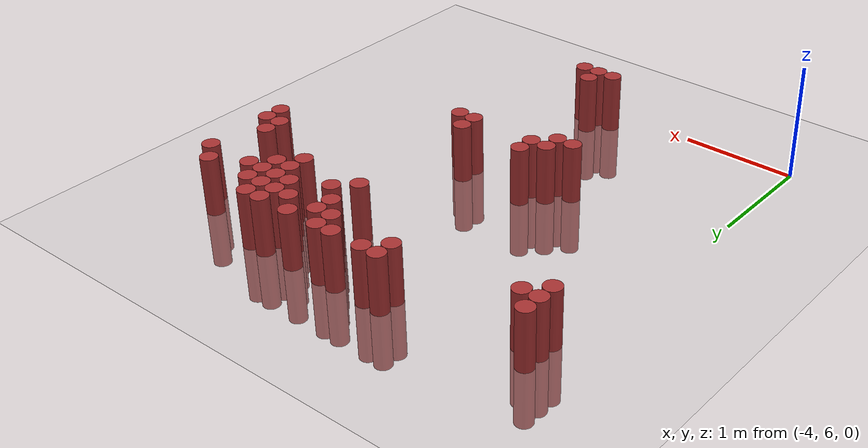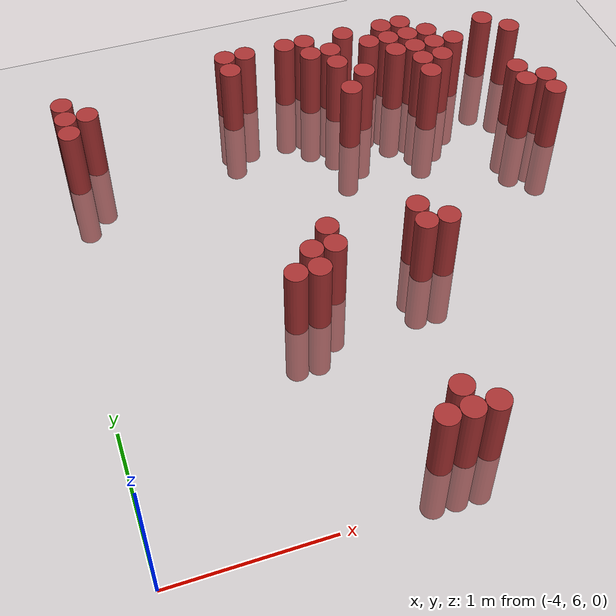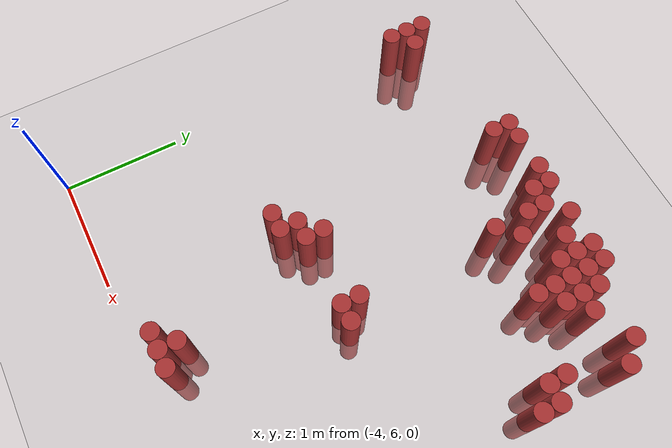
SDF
<sdf version="1.6">
 <world name="default">
  <model name="ground_plane">
   <static>1</static>
   <link name="link">
    <collision name="collision">
     <geometry><plane><normal>0 0 1</normal><size>100 100</size></plane></geometry>
     <surface><friction><ode><mu>100</mu><mu2>50</mu2></ode></friction></surface>
    </collision>
    <visual name="visual">
     <cast_shadows>0</cast_shadows>
     <geometry><plane><normal>0 0 1</normal><size>100 100</size></plane></geometry>
     <material>
      <script><uri>file://media/materials/scripts/gazebo.material</uri><name>Gazebo/Grey</name></script>
     </material>
    </visual>
   </link>
  </model>
  <model name="unit_cylinder_160">
   <static>1</static>
   <pose>-3.825000 9.075000 0.000000 0.000000 0.000000 0.000000</pose>
   <link name="link">
    <inertial>
     <mass>1</mass>
     <inertia><ixx>0.145833</ixx><ixy>0</ixy><ixz>0</ixz><iyy>0.145833</iyy><iyz>0</iyz><izz>0.125</izz></inertia>
    </inertial>
    <collision name="collision">
     <geometry><cylinder><radius>0.075000</radius><length>1</length></cylinder></geometry>
    </collision>
    <visual name="visual">
     <geometry><cylinder><radius>0.075000</radius><length>1</length></cylinder></geometry>
     <material>
      <ambient>0.648000 0.192000 0.192000 1</ambient>
      <diffuse>0.648000 0.192000 0.192000 1</diffuse>
     </material>
     <material>
      <script><name>Gazebo/Grey</name><uri>file://media/materials/scripts/gazebo.material</uri></script>
     </material>
    </visual>
   </link>
  </model>
  <model name="unit_cylinder_161">
   <static>1</static>
   <pose>-3.825000 9.225000 0.000000 0.000000 0.000000 0.000000</pose>
   <link name="link">
    <inertial>
     <mass>1</mass>
     <inertia><ixx>0.145833</ixx><ixy>0</ixy><ixz>0</ixz><iyy>0.145833</iyy><iyz>0</iyz><izz>0.125</izz></inertia>
    </inertial>
    <collision name="collision">
     <geometry><cylinder><radius>0.075000</radius><length>1</length></cylinder></geometry>
    </collision>
    <visual name="visual">
     <geometry><cylinder><radius>0.075000</radius><length>1</length></cylinder></geometry>
     <material>
      <ambient>0.648000 0.192000 0.192000 1</ambient>
      <diffuse>0.648000 0.192000 0.192000 1</diffuse>
     </material>
     <material>
      <script><name>Gazebo/Grey</name><uri>file://media/materials/scripts/gazebo.material</uri></script>
     </material>
    </visual>
   </link>
  </model>
  <model name="unit_cylinder_162">
   <static>1</static>
   <pose>-3.825000 9.375000 0.000000 0.000000 0.000000 0.000000</pose>
   <link name="link">
    <inertial>
     <mass>1</mass>
     <inertia><ixx>0.145833</ixx><ixy>0</ixy><ixz>0</ixz><iyy>0.145833</iyy><iyz>0</iyz><izz>0.125</izz></inertia>
    </inertial>
    <collision name="collision">
     <geometry><cylinder><radius>0.075000</radius><length>1</length></cylinder></geometry>
    </collision>
    <visual name="visual">
     <geometry><cylinder><radius>0.075000</radius><length>1</length></cylinder></geometry>
     <material>
      <ambient>0.648000 0.192000 0.192000 1</ambient>
      <diffuse>0.648000 0.192000 0.192000 1</diffuse>
     </material>
     <material>
      <script><name>Gazebo/Grey</name><uri>file://media/materials/scripts/gazebo.material</uri></script>
     </material>
    </visual>
   </link>
  </model>
  <model name="unit_cylinder_163">
   <static>1</static>
   <pose>-3.675000 9.225000 0.000000 0.000000 0.000000 0.000000</pose>
   <link name="link">
    <inertial>
     <mass>1</mass>
     <inertia><ixx>0.145833</ixx><ixy>0</ixy><ixz>0</ixz><iyy>0.145833</iyy><iyz>0</iyz><izz>0.125</izz></inertia>
    </inertial>
    <collision name="collision">
     <geometry><cylinder><radius>0.075000</radius><length>1</length></cylinder></geometry>
    </collision>
    <visual name="visual">
     <geometry><cylinder><radius>0.075000</radius><length>1</length></cylinder></geometry>
     <material>
      <ambient>0.648000 0.192000 0.192000 1</ambient>
      <diffuse>0.648000 0.192000 0.192000 1</diffuse>
     </material>
     <material>
      <script><name>Gazebo/Grey</name><uri>file://media/materials/scripts/gazebo.material</uri></script>
     </material>
    </visual>
   </link>
  </model>
  <model name="unit_cylinder_177">
   <static>1</static>
   <pose>-2.775000 7.425000 0.000000 0.000000 0.000000 0.000000</pose>
   <link name="link">
    <inertial>
     <mass>1</mass>
     <inertia><ixx>0.145833</ixx><ixy>0</ixy><ixz>0</ixz><iyy>0.145833</iyy><iyz>0</iyz><izz>0.125</izz></inertia>
    </inertial>
    <collision name="collision">
     <geometry><cylinder><radius>0.075000</radius><length>1</length></cylinder></geometry>
    </collision>
    <visual name="visual">
     <geometry><cylinder><radius>0.075000</radius><length>1</length></cylinder></geometry>
     <material>
      <ambient>0.648000 0.192000 0.192000 1</ambient>
      <diffuse>0.648000 0.192000 0.192000 1</diffuse>
     </material>
     <material>
      <script><name>Gazebo/Grey</name><uri>file://media/materials/scripts/gazebo.material</uri></script>
     </material>
    </visual>
   </link>
  </model>
  <model name="unit_cylinder_178">
   <static>1</static>
   <pose>-2.625000 7.425000 0.000000 0.000000 0.000000 0.000000</pose>
   <link name="link">
    <inertial>
     <mass>1</mass>
     <inertia><ixx>0.145833</ixx><ixy>0</ixy><ixz>0</ixz><iyy>0.145833</iyy><iyz>0</iyz><izz>0.125</izz></inertia>
    </inertial>
    <collision name="collision">
     <geometry><cylinder><radius>0.075000</radius><length>1</length></cylinder></geometry>
    </collision>
    <visual name="visual">
     <geometry><cylinder><radius>0.075000</radius><length>1</length></cylinder></geometry>
     <material>
      <ambient>0.648000 0.192000 0.192000 1</ambient>
      <diffuse>0.648000 0.192000 0.192000 1</diffuse>
     </material>
     <material>
      <script><name>Gazebo/Grey</name><uri>file://media/materials/scripts/gazebo.material</uri></script>
     </material>
    </visual>
   </link>
  </model>
  <model name="unit_cylinder_179">
   <static>1</static>
   <pose>-2.625000 7.575000 0.000000 0.000000 0.000000 0.000000</pose>
   <link name="link">
    <inertial>
     <mass>1</mass>
     <inertia><ixx>0.145833</ixx><ixy>0</ixy><ixz>0</ixz><iyy>0.145833</iyy><iyz>0</iyz><izz>0.125</izz></inertia>
    </inertial>
    <collision name="collision">
     <geometry><cylinder><radius>0.075000</radius><length>1</length></cylinder></geometry>
    </collision>
    <visual name="visual">
     <geometry><cylinder><radius>0.075000</radius><length>1</length></cylinder></geometry>
     <material>
      <ambient>0.648000 0.192000 0.192000 1</ambient>
      <diffuse>0.648000 0.192000 0.192000 1</diffuse>
     </material>
     <material>
      <script><name>Gazebo/Grey</name><uri>file://media/materials/scripts/gazebo.material</uri></script>
     </material>
    </visual>
   </link>
  </model>
  <model name="unit_cylinder_180">
   <static>1</static>
   <pose>-2.625000 9.375000 0.000000 0.000000 0.000000 0.000000</pose>
   <link name="link">
    <inertial>
     <mass>1</mass>
     <inertia><ixx>0.145833</ixx><ixy>0</ixy><ixz>0</ixz><iyy>0.145833</iyy><iyz>0</iyz><izz>0.125</izz></inertia>
    </inertial>
    <collision name="collision">
     <geometry><cylinder><radius>0.075000</radius><length>1</length></cylinder></geometry>
    </collision>
    <visual name="visual">
     <geometry><cylinder><radius>0.075000</radius><length>1</length></cylinder></geometry>
     <material>
      <ambient>0.648000 0.192000 0.192000 1</ambient>
      <diffuse>0.648000 0.192000 0.192000 1</diffuse>
     </material>
     <material>
      <script><name>Gazebo/Grey</name><uri>file://media/materials/scripts/gazebo.material</uri></script>
     </material>
    </visual>
   </link>
  </model>
  <model name="unit_cylinder_181">
   <static>1</static>
   <pose>-2.625000 9.525000 0.000000 0.000000 0.000000 0.000000</pose>
   <link name="link">
    <inertial>
     <mass>1</mass>
     <inertia><ixx>0.145833</ixx><ixy>0</ixy><ixz>0</ixz><iyy>0.145833</iyy><iyz>0</iyz><izz>0.125</izz></inertia>
    </inertial>
    <collision name="collision">
     <geometry><cylinder><radius>0.075000</radius><length>1</length></cylinder></geometry>
    </collision>
    <visual name="visual">
     <geometry><cylinder><radius>0.075000</radius><length>1</length></cylinder></geometry>
     <material>
      <ambient>0.648000 0.192000 0.192000 1</ambient>
      <diffuse>0.648000 0.192000 0.192000 1</diffuse>
     </material>
     <material>
      <script><name>Gazebo/Grey</name><uri>file://media/materials/scripts/gazebo.material</uri></script>
     </material>
    </visual>
   </link>
  </model>
  <model name="unit_cylinder_182">
   <static>1</static>
   <pose>-2.475000 7.575000 0.000000 0.000000 0.000000 0.000000</pose>
   <link name="link">
    <inertial>
     <mass>1</mass>
     <inertia><ixx>0.145833</ixx><ixy>0</ixy><ixz>0</ixz><iyy>0.145833</iyy><iyz>0</iyz><izz>0.125</izz></inertia>
    </inertial>
    <collision name="collision">
     <geometry><cylinder><radius>0.075000</radius><length>1</length></cylinder></geometry>
    </collision>
    <visual name="visual">
     <geometry><cylinder><radius>0.075000</radius><length>1</length></cylinder></geometry>
     <material>
      <ambient>0.648000 0.192000 0.192000 1</ambient>
      <diffuse>0.648000 0.192000 0.192000 1</diffuse>
     </material>
     <material>
      <script><name>Gazebo/Grey</name><uri>file://media/materials/scripts/gazebo.material</uri></script>
     </material>
    </visual>
   </link>
  </model>
  <model name="unit_cylinder_183">
   <static>1</static>
   <pose>-2.475000 7.725000 0.000000 0.000000 0.000000 0.000000</pose>
   <link name="link">
    <inertial>
     <mass>1</mass>
     <inertia><ixx>0.145833</ixx><ixy>0</ixy><ixz>0</ixz><iyy>0.145833</iyy><iyz>0</iyz><izz>0.125</izz></inertia>
    </inertial>
    <collision name="collision">
     <geometry><cylinder><radius>0.075000</radius><length>1</length></cylinder></geometry>
    </collision>
    <visual name="visual">
     <geometry><cylinder><radius>0.075000</radius><length>1</length></cylinder></geometry>
     <material>
      <ambient>0.648000 0.192000 0.192000 1</ambient>
      <diffuse>0.648000 0.192000 0.192000 1</diffuse>
     </material>
     <material>
      <script><name>Gazebo/Grey</name><uri>file://media/materials/scripts/gazebo.material</uri></script>
     </material>
    </visual>
   </link>
  </model>
  <model name="unit_cylinder_184">
   <static>1</static>
   <pose>-2.475000 9.525000 0.000000 0.000000 0.000000 0.000000</pose>
   <link name="link">
    <inertial>
     <mass>1</mass>
     <inertia><ixx>0.145833</ixx><ixy>0</ixy><ixz>0</ixz><iyy>0.145833</iyy><iyz>0</iyz><izz>0.125</izz></inertia>
    </inertial>
    <collision name="collision">
     <geometry><cylinder><radius>0.075000</radius><length>1</length></cylinder></geometry>
    </collision>
    <visual name="visual">
     <geometry><cylinder><radius>0.075000</radius><length>1</length></cylinder></geometry>
     <material>
      <ambient>0.648000 0.192000 0.192000 1</ambient>
      <diffuse>0.648000 0.192000 0.192000 1</diffuse>
     </material>
     <material>
      <script><name>Gazebo/Grey</name><uri>file://media/materials/scripts/gazebo.material</uri></script>
     </material>
    </visual>
   </link>
  </model>
  <model name="unit_cylinder_185">
   <static>1</static>
   <pose>-2.325000 6.225000 0.000000 0.000000 0.000000 0.000000</pose>
   <link name="link">
    <inertial>
     <mass>1</mass>
     <inertia><ixx>0.145833</ixx><ixy>0</ixy><ixz>0</ixz><iyy>0.145833</iyy><iyz>0</iyz><izz>0.125</izz></inertia>
    </inertial>
    <collision name="collision">
     <geometry><cylinder><radius>0.075000</radius><length>1</length></cylinder></geometry>
    </collision>
    <visual name="visual">
     <geometry><cylinder><radius>0.075000</radius><length>1</length></cylinder></geometry>
     <material>
      <ambient>0.648000 0.192000 0.192000 1</ambient>
      <diffuse>0.648000 0.192000 0.192000 1</diffuse>
     </material>
     <material>
      <script><name>Gazebo/Grey</name><uri>file://media/materials/scripts/gazebo.material</uri></script>
     </material>
    </visual>
   </link>
  </model>
  <model name="unit_cylinder_187">
   <static>1</static>
   <pose>-2.175000 6.225000 0.000000 0.000000 0.000000 0.000000</pose>
   <link name="link">
    <inertial>
     <mass>1</mass>
     <inertia><ixx>0.145833</ixx><ixy>0</ixy><ixz>0</ixz><iyy>0.145833</iyy><iyz>0</iyz><izz>0.125</izz></inertia>
    </inertial>
    <collision name="collision">
     <geometry><cylinder><radius>0.075000</radius><length>1</length></cylinder></geometry>
    </collision>
    <visual name="visual">
     <geometry><cylinder><radius>0.075000</radius><length>1</length></cylinder></geometry>
     <material>
      <ambient>0.648000 0.192000 0.192000 1</ambient>
      <diffuse>0.648000 0.192000 0.192000 1</diffuse>
     </material>
     <material>
      <script><name>Gazebo/Grey</name><uri>file://media/materials/scripts/gazebo.material</uri></script>
     </material>
    </visual>
   </link>
  </model>
  <model name="unit_cylinder_188">
   <static>1</static>
   <pose>-2.175000 6.375000 0.000000 0.000000 0.000000 0.000000</pose>
   <link name="link">
    <inertial>
     <mass>1</mass>
     <inertia><ixx>0.145833</ixx><ixy>0</ixy><ixz>0</ixz><iyy>0.145833</iyy><iyz>0</iyz><izz>0.125</izz></inertia>
    </inertial>
    <collision name="collision">
     <geometry><cylinder><radius>0.075000</radius><length>1</length></cylinder></geometry>
    </collision>
    <visual name="visual">
     <geometry><cylinder><radius>0.075000</radius><length>1</length></cylinder></geometry>
     <material>
      <ambient>0.648000 0.192000 0.192000 1</ambient>
      <diffuse>0.648000 0.192000 0.192000 1</diffuse>
     </material>
     <material>
      <script><name>Gazebo/Grey</name><uri>file://media/materials/scripts/gazebo.material</uri></script>
     </material>
    </visual>
   </link>
  </model>
  <model name="unit_cylinder_189">
   <static>1</static>
   <pose>-2.175000 9.525000 0.000000 0.000000 0.000000 0.000000</pose>
   <link name="link">
    <inertial>
     <mass>1</mass>
     <inertia><ixx>0.145833</ixx><ixy>0</ixy><ixz>0</ixz><iyy>0.145833</iyy><iyz>0</iyz><izz>0.125</izz></inertia>
    </inertial>
    <collision name="collision">
     <geometry><cylinder><radius>0.075000</radius><length>1</length></cylinder></geometry>
    </collision>
    <visual name="visual">
     <geometry><cylinder><radius>0.075000</radius><length>1</length></cylinder></geometry>
     <material>
      <ambient>0.648000 0.192000 0.192000 1</ambient>
      <diffuse>0.648000 0.192000 0.192000 1</diffuse>
     </material>
     <material>
      <script><name>Gazebo/Grey</name><uri>file://media/materials/scripts/gazebo.material</uri></script>
     </material>
    </visual>
   </link>
  </model>
  <model name="unit_cylinder_192">
   <static>1</static>
   <pose>-2.025000 6.225000 0.000000 0.000000 0.000000 0.000000</pose>
   <link name="link">
    <inertial>
     <mass>1</mass>
     <inertia><ixx>0.145833</ixx><ixy>0</ixy><ixz>0</ixz><iyy>0.145833</iyy><iyz>0</iyz><izz>0.125</izz></inertia>
    </inertial>
    <collision name="collision">
     <geometry><cylinder><radius>0.075000</radius><length>1</length></cylinder></geometry>
    </collision>
    <visual name="visual">
     <geometry><cylinder><radius>0.075000</radius><length>1</length></cylinder></geometry>
     <material>
      <ambient>0.648000 0.192000 0.192000 1</ambient>
      <diffuse>0.648000 0.192000 0.192000 1</diffuse>
     </material>
     <material>
      <script><name>Gazebo/Grey</name><uri>file://media/materials/scripts/gazebo.material</uri></script>
     </material>
    </visual>
   </link>
  </model>
  <model name="unit_cylinder_193">
   <static>1</static>
   <pose>-2.025000 9.375000 0.000000 0.000000 0.000000 0.000000</pose>
   <link name="link">
    <inertial>
     <mass>1</mass>
     <inertia><ixx>0.145833</ixx><ixy>0</ixy><ixz>0</ixz><iyy>0.145833</iyy><iyz>0</iyz><izz>0.125</izz></inertia>
    </inertial>
    <collision name="collision">
     <geometry><cylinder><radius>0.075000</radius><length>1</length></cylinder></geometry>
    </collision>
    <visual name="visual">
     <geometry><cylinder><radius>0.075000</radius><length>1</length></cylinder></geometry>
     <material>
      <ambient>0.648000 0.192000 0.192000 1</ambient>
      <diffuse>0.648000 0.192000 0.192000 1</diffuse>
     </material>
     <material>
      <script><name>Gazebo/Grey</name><uri>file://media/materials/scripts/gazebo.material</uri></script>
     </material>
    </visual>
   </link>
  </model>
  <model name="unit_cylinder_194">
   <static>1</static>
   <pose>-2.025000 9.525000 0.000000 0.000000 0.000000 0.000000</pose>
   <link name="link">
    <inertial>
     <mass>1</mass>
     <inertia><ixx>0.145833</ixx><ixy>0</ixy><ixz>0</ixz><iyy>0.145833</iyy><iyz>0</iyz><izz>0.125</izz></inertia>
    </inertial>
    <collision name="collision">
     <geometry><cylinder><radius>0.075000</radius><length>1</length></cylinder></geometry>
    </collision>
    <visual name="visual">
     <geometry><cylinder><radius>0.075000</radius><length>1</length></cylinder></geometry>
     <material>
      <ambient>0.648000 0.192000 0.192000 1</ambient>
      <diffuse>0.648000 0.192000 0.192000 1</diffuse>
     </material>
     <material>
      <script><name>Gazebo/Grey</name><uri>file://media/materials/scripts/gazebo.material</uri></script>
     </material>
    </visual>
   </link>
  </model>
  <model name="unit_cylinder_198">
   <static>1</static>
   <pose>-1.875000 7.575000 0.000000 0.000000 0.000000 0.000000</pose>
   <link name="link">
    <inertial>
     <mass>1</mass>
     <inertia><ixx>0.145833</ixx><ixy>0</ixy><ixz>0</ixz><iyy>0.145833</iyy><iyz>0</iyz><izz>0.125</izz></inertia>
    </inertial>
    <collision name="collision">
     <geometry><cylinder><radius>0.075000</radius><length>1</length></cylinder></geometry>
    </collision>
    <visual name="visual">
     <geometry><cylinder><radius>0.075000</radius><length>1</length></cylinder></geometry>
     <material>
      <ambient>0.648000 0.192000 0.192000 1</ambient>
      <diffuse>0.648000 0.192000 0.192000 1</diffuse>
     </material>
     <material>
      <script><name>Gazebo/Grey</name><uri>file://media/materials/scripts/gazebo.material</uri></script>
     </material>
    </visual>
   </link>
  </model>
  <model name="unit_cylinder_199">
   <static>1</static>
   <pose>-1.875000 7.725000 0.000000 0.000000 0.000000 0.000000</pose>
   <link name="link">
    <inertial>
     <mass>1</mass>
     <inertia><ixx>0.145833</ixx><ixy>0</ixy><ixz>0</ixz><iyy>0.145833</iyy><iyz>0</iyz><izz>0.125</izz></inertia>
    </inertial>
    <collision name="collision">
     <geometry><cylinder><radius>0.075000</radius><length>1</length></cylinder></geometry>
    </collision>
    <visual name="visual">
     <geometry><cylinder><radius>0.075000</radius><length>1</length></cylinder></geometry>
     <material>
      <ambient>0.648000 0.192000 0.192000 1</ambient>
      <diffuse>0.648000 0.192000 0.192000 1</diffuse>
     </material>
     <material>
      <script><name>Gazebo/Grey</name><uri>file://media/materials/scripts/gazebo.material</uri></script>
     </material>
    </visual>
   </link>
  </model>
  <model name="unit_cylinder_200">
   <static>1</static>
   <pose>-1.875000 8.925000 0.000000 0.000000 0.000000 0.000000</pose>
   <link name="link">
    <inertial>
     <mass>1</mass>
     <inertia><ixx>0.145833</ixx><ixy>0</ixy><ixz>0</ixz><iyy>0.145833</iyy><iyz>0</iyz><izz>0.125</izz></inertia>
    </inertial>
    <collision name="collision">
     <geometry><cylinder><radius>0.075000</radius><length>1</length></cylinder></geometry>
    </collision>
    <visual name="visual">
     <geometry><cylinder><radius>0.075000</radius><length>1</length></cylinder></geometry>
     <material>
      <ambient>0.648000 0.192000 0.192000 1</ambient>
      <diffuse>0.648000 0.192000 0.192000 1</diffuse>
     </material>
     <material>
      <script><name>Gazebo/Grey</name><uri>file://media/materials/scripts/gazebo.material</uri></script>
     </material>
    </visual>
   </link>
  </model>
  <model name="unit_cylinder_201">
   <static>1</static>
   <pose>-1.875000 9.225000 0.000000 0.000000 0.000000 0.000000</pose>
   <link name="link">
    <inertial>
     <mass>1</mass>
     <inertia><ixx>0.145833</ixx><ixy>0</ixy><ixz>0</ixz><iyy>0.145833</iyy><iyz>0</iyz><izz>0.125</izz></inertia>
    </inertial>
    <collision name="collision">
     <geometry><cylinder><radius>0.075000</radius><length>1</length></cylinder></geometry>
    </collision>
    <visual name="visual">
     <geometry><cylinder><radius>0.075000</radius><length>1</length></cylinder></geometry>
     <material>
      <ambient>0.648000 0.192000 0.192000 1</ambient>
      <diffuse>0.648000 0.192000 0.192000 1</diffuse>
     </material>
     <material>
      <script><name>Gazebo/Grey</name><uri>file://media/materials/scripts/gazebo.material</uri></script>
     </material>
    </visual>
   </link>
  </model>
  <model name="unit_cylinder_202">
   <static>1</static>
   <pose>-1.875000 9.375000 0.000000 0.000000 0.000000 0.000000</pose>
   <link name="link">
    <inertial>
     <mass>1</mass>
     <inertia><ixx>0.145833</ixx><ixy>0</ixy><ixz>0</ixz><iyy>0.145833</iyy><iyz>0</iyz><izz>0.125</izz></inertia>
    </inertial>
    <collision name="collision">
     <geometry><cylinder><radius>0.075000</radius><length>1</length></cylinder></geometry>
    </collision>
    <visual name="visual">
     <geometry><cylinder><radius>0.075000</radius><length>1</length></cylinder></geometry>
     <material>
      <ambient>0.648000 0.192000 0.192000 1</ambient>
      <diffuse>0.648000 0.192000 0.192000 1</diffuse>
     </material>
     <material>
      <script><name>Gazebo/Grey</name><uri>file://media/materials/scripts/gazebo.material</uri></script>
     </material>
    </visual>
   </link>
  </model>
  <model name="unit_cylinder_203">
   <static>1</static>
   <pose>-1.725000 7.575000 0.000000 0.000000 0.000000 0.000000</pose>
   <link name="link">
    <inertial>
     <mass>1</mass>
     <inertia><ixx>0.145833</ixx><ixy>0</ixy><ixz>0</ixz><iyy>0.145833</iyy><iyz>0</iyz><izz>0.125</izz></inertia>
    </inertial>
    <collision name="collision">
     <geometry><cylinder><radius>0.075000</radius><length>1</length></cylinder></geometry>
    </collision>
    <visual name="visual">
     <geometry><cylinder><radius>0.075000</radius><length>1</length></cylinder></geometry>
     <material>
      <ambient>0.648000 0.192000 0.192000 1</ambient>
      <diffuse>0.648000 0.192000 0.192000 1</diffuse>
     </material>
     <material>
      <script><name>Gazebo/Grey</name><uri>file://media/materials/scripts/gazebo.material</uri></script>
     </material>
    </visual>
   </link>
  </model>
  <model name="unit_cylinder_204">
   <static>1</static>
   <pose>-1.725000 9.075000 0.000000 0.000000 0.000000 0.000000</pose>
   <link name="link">
    <inertial>
     <mass>1</mass>
     <inertia><ixx>0.145833</ixx><ixy>0</ixy><ixz>0</ixz><iyy>0.145833</iyy><iyz>0</iyz><izz>0.125</izz></inertia>
    </inertial>
    <collision name="collision">
     <geometry><cylinder><radius>0.075000</radius><length>1</length></cylinder></geometry>
    </collision>
    <visual name="visual">
     <geometry><cylinder><radius>0.075000</radius><length>1</length></cylinder></geometry>
     <material>
      <ambient>0.648000 0.192000 0.192000 1</ambient>
      <diffuse>0.648000 0.192000 0.192000 1</diffuse>
     </material>
     <material>
      <script><name>Gazebo/Grey</name><uri>file://media/materials/scripts/gazebo.material</uri></script>
     </material>
    </visual>
   </link>
  </model>
  <model name="unit_cylinder_205">
   <static>1</static>
   <pose>-1.725000 9.525000 0.000000 0.000000 0.000000 0.000000</pose>
   <link name="link">
    <inertial>
     <mass>1</mass>
     <inertia><ixx>0.145833</ixx><ixy>0</ixy><ixz>0</ixz><iyy>0.145833</iyy><iyz>0</iyz><izz>0.125</izz></inertia>
    </inertial>
    <collision name="collision">
     <geometry><cylinder><radius>0.075000</radius><length>1</length></cylinder></geometry>
    </collision>
    <visual name="visual">
     <geometry><cylinder><radius>0.075000</radius><length>1</length></cylinder></geometry>
     <material>
      <ambient>0.648000 0.192000 0.192000 1</ambient>
      <diffuse>0.648000 0.192000 0.192000 1</diffuse>
     </material>
     <material>
      <script><name>Gazebo/Grey</name><uri>file://media/materials/scripts/gazebo.material</uri></script>
     </material>
    </visual>
   </link>
  </model>
  <model name="unit_cylinder_206">
   <static>1</static>
   <pose>-1.575000 9.375000 0.000000 0.000000 0.000000 0.000000</pose>
   <link name="link">
    <inertial>
     <mass>1</mass>
     <inertia><ixx>0.145833</ixx><ixy>0</ixy><ixz>0</ixz><iyy>0.145833</iyy><iyz>0</iyz><izz>0.125</izz></inertia>
    </inertial>
    <collision name="collision">
     <geometry><cylinder><radius>0.075000</radius><length>1</length></cylinder></geometry>
    </collision>
    <visual name="visual">
     <geometry><cylinder><radius>0.075000</radius><length>1</length></cylinder></geometry>
     <material>
      <ambient>0.648000 0.192000 0.192000 1</ambient>
      <diffuse>0.648000 0.192000 0.192000 1</diffuse>
     </material>
     <material>
      <script><name>Gazebo/Grey</name><uri>file://media/materials/scripts/gazebo.material</uri></script>
     </material>
    </visual>
   </link>
  </model>
  <model name="unit_cylinder_207">
   <static>1</static>
   <pose>-1.425000 9.225000 0.000000 0.000000 0.000000 0.000000</pose>
   <link name="link">
    <inertial>
     <mass>1</mass>
     <inertia><ixx>0.145833</ixx><ixy>0</ixy><ixz>0</ixz><iyy>0.145833</iyy><iyz>0</iyz><izz>0.125</izz></inertia>
    </inertial>
    <collision name="collision">
     <geometry><cylinder><radius>0.075000</radius><length>1</length></cylinder></geometry>
    </collision>
    <visual name="visual">
     <geometry><cylinder><radius>0.075000</radius><length>1</length></cylinder></geometry>
     <material>
      <ambient>0.648000 0.192000 0.192000 1</ambient>
      <diffuse>0.648000 0.192000 0.192000 1</diffuse>
     </material>
     <material>
      <script><name>Gazebo/Grey</name><uri>file://media/materials/scripts/gazebo.material</uri></script>
     </material>
    </visual>
   </link>
  </model>
  <model name="unit_cylinder_208">
   <static>1</static>
   <pose>-1.425000 9.375000 0.000000 0.000000 0.000000 0.000000</pose>
   <link name="link">
    <inertial>
     <mass>1</mass>
     <inertia><ixx>0.145833</ixx><ixy>0</ixy><ixz>0</ixz><iyy>0.145833</iyy><iyz>0</iyz><izz>0.125</izz></inertia>
    </inertial>
    <collision name="collision">
     <geometry><cylinder><radius>0.075000</radius><length>1</length></cylinder></geometry>
    </collision>
    <visual name="visual">
     <geometry><cylinder><radius>0.075000</radius><length>1</length></cylinder></geometry>
     <material>
      <ambient>0.648000 0.192000 0.192000 1</ambient>
      <diffuse>0.648000 0.192000 0.192000 1</diffuse>
     </material>
     <material>
      <script><name>Gazebo/Grey</name><uri>file://media/materials/scripts/gazebo.material</uri></script>
     </material>
    </visual>
   </link>
  </model>
  <model name="unit_cylinder_209">
   <static>1</static>
   <pose>-1.425000 9.525000 0.000000 0.000000 0.000000 0.000000</pose>
   <link name="link">
    <inertial>
     <mass>1</mass>
     <inertia><ixx>0.145833</ixx><ixy>0</ixy><ixz>0</ixz><iyy>0.145833</iyy><iyz>0</iyz><izz>0.125</izz></inertia>
    </inertial>
    <collision name="collision">
     <geometry><cylinder><radius>0.075000</radius><length>1</length></cylinder></geometry>
    </collision>
    <visual name="visual">
     <geometry><cylinder><radius>0.075000</radius><length>1</length></cylinder></geometry>
     <material>
      <ambient>0.648000 0.192000 0.192000 1</ambient>
      <diffuse>0.648000 0.192000 0.192000 1</diffuse>
     </material>
     <material>
      <script><name>Gazebo/Grey</name><uri>file://media/materials/scripts/gazebo.material</uri></script>
     </material>
    </visual>
   </link>
  </model>
  <model name="unit_cylinder_210">
   <static>1</static>
   <pose>-1.275000 8.925000 0.000000 0.000000 0.000000 0.000000</pose>
   <link name="link">
    <inertial>
     <mass>1</mass>
     <inertia><ixx>0.145833</ixx><ixy>0</ixy><ixz>0</ixz><iyy>0.145833</iyy><iyz>0</iyz><izz>0.125</izz></inertia>
    </inertial>
    <collision name="collision">
     <geometry><cylinder><radius>0.075000</radius><length>1</length></cylinder></geometry>
    </collision>
    <visual name="visual">
     <geometry><cylinder><radius>0.075000</radius><length>1</length></cylinder></geometry>
     <material>
      <ambient>0.648000 0.192000 0.192000 1</ambient>
      <diffuse>0.648000 0.192000 0.192000 1</diffuse>
     </material>
     <material>
      <script><name>Gazebo/Grey</name><uri>file://media/materials/scripts/gazebo.material</uri></script>
     </material>
    </visual>
   </link>
  </model>
  <model name="unit_cylinder_211">
   <static>1</static>
   <pose>-1.275000 9.075000 0.000000 0.000000 0.000000 0.000000</pose>
   <link name="link">
    <inertial>
     <mass>1</mass>
     <inertia><ixx>0.145833</ixx><ixy>0</ixy><ixz>0</ixz><iyy>0.145833</iyy><iyz>0</iyz><izz>0.125</izz></inertia>
    </inertial>
    <collision name="collision">
     <geometry><cylinder><radius>0.075000</radius><length>1</length></cylinder></geometry>
    </collision>
    <visual name="visual">
     <geometry><cylinder><radius>0.075000</radius><length>1</length></cylinder></geometry>
     <material>
      <ambient>0.648000 0.192000 0.192000 1</ambient>
      <diffuse>0.648000 0.192000 0.192000 1</diffuse>
     </material>
     <material>
      <script><name>Gazebo/Grey</name><uri>file://media/materials/scripts/gazebo.material</uri></script>
     </material>
    </visual>
   </link>
  </model>
  <model name="unit_cylinder_212">
   <static>1</static>
   <pose>-1.275000 9.225000 0.000000 0.000000 0.000000 0.000000</pose>
   <link name="link">
    <inertial>
     <mass>1</mass>
     <inertia><ixx>0.145833</ixx><ixy>0</ixy><ixz>0</ixz><iyy>0.145833</iyy><iyz>0</iyz><izz>0.125</izz></inertia>
    </inertial>
    <collision name="collision">
     <geometry><cylinder><radius>0.075000</radius><length>1</length></cylinder></geometry>
    </collision>
    <visual name="visual">
     <geometry><cylinder><radius>0.075000</radius><length>1</length></cylinder></geometry>
     <material>
      <ambient>0.648000 0.192000 0.192000 1</ambient>
      <diffuse>0.648000 0.192000 0.192000 1</diffuse>
     </material>
     <material>
      <script><name>Gazebo/Grey</name><uri>file://media/materials/scripts/gazebo.material</uri></script>
     </material>
    </visual>
   </link>
  </model>
  <model name="unit_cylinder_213">
   <static>1</static>
   <pose>-1.275000 9.375000 0.000000 0.000000 0.000000 0.000000</pose>
   <link name="link">
    <inertial>
     <mass>1</mass>
     <inertia><ixx>0.145833</ixx><ixy>0</ixy><ixz>0</ixz><iyy>0.145833</iyy><iyz>0</iyz><izz>0.125</izz></inertia>
    </inertial>
    <collision name="collision">
     <geometry><cylinder><radius>0.075000</radius><length>1</length></cylinder></geometry>
    </collision>
    <visual name="visual">
     <geometry><cylinder><radius>0.075000</radius><length>1</length></cylinder></geometry>
     <material>
      <ambient>0.648000 0.192000 0.192000 1</ambient>
      <diffuse>0.648000 0.192000 0.192000 1</diffuse>
     </material>
     <material>
      <script><name>Gazebo/Grey</name><uri>file://media/materials/scripts/gazebo.material</uri></script>
     </material>
    </visual>
   </link>
  </model>
  <model name="unit_cylinder_214">
   <static>1</static>
   <pose>-1.275000 9.525000 0.000000 0.000000 0.000000 0.000000</pose>
   <link name="link">
    <inertial>
     <mass>1</mass>
     <inertia><ixx>0.145833</ixx><ixy>0</ixy><ixz>0</ixz><iyy>0.145833</iyy><iyz>0</iyz><izz>0.125</izz></inertia>
    </inertial>
    <collision name="collision">
     <geometry><cylinder><radius>0.075000</radius><length>1</length></cylinder></geometry>
    </collision>
    <visual name="visual">
     <geometry><cylinder><radius>0.075000</radius><length>1</length></cylinder></geometry>
     <material>
      <ambient>0.648000 0.192000 0.192000 1</ambient>
      <diffuse>0.648000 0.192000 0.192000 1</diffuse>
     </material>
     <material>
      <script><name>Gazebo/Grey</name><uri>file://media/materials/scripts/gazebo.material</uri></script>
     </material>
    </visual>
   </link>
  </model>
  <model name="unit_cylinder_215">
   <static>1</static>
   <pose>-1.125000 9.075000 0.000000 0.000000 0.000000 0.000000</pose>
   <link name="link">
    <inertial>
     <mass>1</mass>
     <inertia><ixx>0.145833</ixx><ixy>0</ixy><ixz>0</ixz><iyy>0.145833</iyy><iyz>0</iyz><izz>0.125</izz></inertia>
    </inertial>
    <collision name="collision">
     <geometry><cylinder><radius>0.075000</radius><length>1</length></cylinder></geometry>
    </collision>
    <visual name="visual">
     <geometry><cylinder><radius>0.075000</radius><length>1</length></cylinder></geometry>
     <material>
      <ambient>0.648000 0.192000 0.192000 1</ambient>
      <diffuse>0.648000 0.192000 0.192000 1</diffuse>
     </material>
     <material>
      <script><name>Gazebo/Grey</name><uri>file://media/materials/scripts/gazebo.material</uri></script>
     </material>
    </visual>
   </link>
  </model>
  <model name="unit_cylinder_216">
   <static>1</static>
   <pose>-1.125000 9.225000 0.000000 0.000000 0.000000 0.000000</pose>
   <link name="link">
    <inertial>
     <mass>1</mass>
     <inertia><ixx>0.145833</ixx><ixy>0</ixy><ixz>0</ixz><iyy>0.145833</iyy><iyz>0</iyz><izz>0.125</izz></inertia>
    </inertial>
    <collision name="collision">
     <geometry><cylinder><radius>0.075000</radius><length>1</length></cylinder></geometry>
    </collision>
    <visual name="visual">
     <geometry><cylinder><radius>0.075000</radius><length>1</length></cylinder></geometry>
     <material>
      <ambient>0.648000 0.192000 0.192000 1</ambient>
      <diffuse>0.648000 0.192000 0.192000 1</diffuse>
     </material>
     <material>
      <script><name>Gazebo/Grey</name><uri>file://media/materials/scripts/gazebo.material</uri></script>
     </material>
    </visual>
   </link>
  </model>
  <model name="unit_cylinder_217">
   <static>1</static>
   <pose>-1.125000 9.375000 0.000000 0.000000 0.000000 0.000000</pose>
   <link name="link">
    <inertial>
     <mass>1</mass>
     <inertia><ixx>0.145833</ixx><ixy>0</ixy><ixz>0</ixz><iyy>0.145833</iyy><iyz>0</iyz><izz>0.125</izz></inertia>
    </inertial>
    <collision name="collision">
     <geometry><cylinder><radius>0.075000</radius><length>1</length></cylinder></geometry>
    </collision>
    <visual name="visual">
     <geometry><cylinder><radius>0.075000</radius><length>1</length></cylinder></geometry>
     <material>
      <ambient>0.648000 0.192000 0.192000 1</ambient>
      <diffuse>0.648000 0.192000 0.192000 1</diffuse>
     </material>
     <material>
      <script><name>Gazebo/Grey</name><uri>file://media/materials/scripts/gazebo.material</uri></script>
     </material>
    </visual>
   </link>
  </model>
  <model name="unit_cylinder_218">
   <static>1</static>
   <pose>-0.975000 9.225000 0.000000 0.000000 0.000000 0.000000</pose>
   <link name="link">
    <inertial>
     <mass>1</mass>
     <inertia><ixx>0.145833</ixx><ixy>0</ixy><ixz>0</ixz><iyy>0.145833</iyy><iyz>0</iyz><izz>0.125</izz></inertia>
    </inertial>
    <collision name="collision">
     <geometry><cylinder><radius>0.075000</radius><length>1</length></cylinder></geometry>
    </collision>
    <visual name="visual">
     <geometry><cylinder><radius>0.075000</radius><length>1</length></cylinder></geometry>
     <material>
      <ambient>0.648000 0.192000 0.192000 1</ambient>
      <diffuse>0.648000 0.192000 0.192000 1</diffuse>
     </material>
     <material>
      <script><name>Gazebo/Grey</name><uri>file://media/materials/scripts/gazebo.material</uri></script>
     </material>
    </visual>
   </link>
  </model>
  <model name="unit_cylinder_219">
   <static>1</static>
   <pose>-0.675000 8.625000 0.000000 0.000000 0.000000 0.000000</pose>
   <link name="link">
    <inertial>
     <mass>1</mass>
     <inertia><ixx>0.145833</ixx><ixy>0</ixy><ixz>0</ixz><iyy>0.145833</iyy><iyz>0</iyz><izz>0.125</izz></inertia>
    </inertial>
    <collision name="collision">
     <geometry><cylinder><radius>0.075000</radius><length>1</length></cylinder></geometry>
    </collision>
    <visual name="visual">
     <geometry><cylinder><radius>0.075000</radius><length>1</length></cylinder></geometry>
     <material>
      <ambient>0.648000 0.192000 0.192000 1</ambient>
      <diffuse>0.648000 0.192000 0.192000 1</diffuse>
     </material>
     <material>
      <script><name>Gazebo/Grey</name><uri>file://media/materials/scripts/gazebo.material</uri></script>
     </material>
    </visual>
   </link>
  </model>
  <model name="unit_cylinder_220">
   <static>1</static>
   <pose>-0.675000 8.775000 0.000000 0.000000 0.000000 0.000000</pose>
   <link name="link">
    <inertial>
     <mass>1</mass>
     <inertia><ixx>0.145833</ixx><ixy>0</ixy><ixz>0</ixz><iyy>0.145833</iyy><iyz>0</iyz><izz>0.125</izz></inertia>
    </inertial>
    <collision name="collision">
     <geometry><cylinder><radius>0.075000</radius><length>1</length></cylinder></geometry>
    </collision>
    <visual name="visual">
     <geometry><cylinder><radius>0.075000</radius><length>1</length></cylinder></geometry>
     <material>
      <ambient>0.648000 0.192000 0.192000 1</ambient>
      <diffuse>0.648000 0.192000 0.192000 1</diffuse>
     </material>
     <material>
      <script><name>Gazebo/Grey</name><uri>file://media/materials/scripts/gazebo.material</uri></script>
     </material>
    </visual>
   </link>
  </model>
  <model name="unit_cylinder_221">
   <static>1</static>
   <pose>-0.675000 9.375000 0.000000 0.000000 0.000000 0.000000</pose>
   <link name="link">
    <inertial>
     <mass>1</mass>
     <inertia><ixx>0.145833</ixx><ixy>0</ixy><ixz>0</ixz><iyy>0.145833</iyy><iyz>0</iyz><izz>0.125</izz></inertia>
    </inertial>
    <collision name="collision">
     <geometry><cylinder><radius>0.075000</radius><length>1</length></cylinder></geometry>
    </collision>
    <visual name="visual">
     <geometry><cylinder><radius>0.075000</radius><length>1</length></cylinder></geometry>
     <material>
      <ambient>0.648000 0.192000 0.192000 1</ambient>
      <diffuse>0.648000 0.192000 0.192000 1</diffuse>
     </material>
     <material>
      <script><name>Gazebo/Grey</name><uri>file://media/materials/scripts/gazebo.material</uri></script>
     </material>
    </visual>
   </link>
  </model>
  <model name="unit_cylinder_222">
   <static>1</static>
   <pose>-0.525000 8.475000 0.000000 0.000000 0.000000 0.000000</pose>
   <link name="link">
    <inertial>
     <mass>1</mass>
     <inertia><ixx>0.145833</ixx><ixy>0</ixy><ixz>0</ixz><iyy>0.145833</iyy><iyz>0</iyz><izz>0.125</izz></inertia>
    </inertial>
    <collision name="collision">
     <geometry><cylinder><radius>0.075000</radius><length>1</length></cylinder></geometry>
    </collision>
    <visual name="visual">
     <geometry><cylinder><radius>0.075000</radius><length>1</length></cylinder></geometry>
     <material>
      <ambient>0.648000 0.192000 0.192000 1</ambient>
      <diffuse>0.648000 0.192000 0.192000 1</diffuse>
     </material>
     <material>
      <script><name>Gazebo/Grey</name><uri>file://media/materials/scripts/gazebo.material</uri></script>
     </material>
    </visual>
   </link>
  </model>
  <model name="unit_cylinder_223">
   <static>1</static>
   <pose>-0.525000 8.625000 0.000000 0.000000 0.000000 0.000000</pose>
   <link name="link">
    <inertial>
     <mass>1</mass>
     <inertia><ixx>0.145833</ixx><ixy>0</ixy><ixz>0</ixz><iyy>0.145833</iyy><iyz>0</iyz><izz>0.125</izz></inertia>
    </inertial>
    <collision name="collision">
     <geometry><cylinder><radius>0.075000</radius><length>1</length></cylinder></geometry>
    </collision>
    <visual name="visual">
     <geometry><cylinder><radius>0.075000</radius><length>1</length></cylinder></geometry>
     <material>
      <ambient>0.648000 0.192000 0.192000 1</ambient>
      <diffuse>0.648000 0.192000 0.192000 1</diffuse>
     </material>
     <material>
      <script><name>Gazebo/Grey</name><uri>file://media/materials/scripts/gazebo.material</uri></script>
     </material>
    </visual>
   </link>
  </model>
  <model name="unit_cylinder_224">
   <static>1</static>
   <pose>-0.525000 9.225000 0.000000 0.000000 0.000000 0.000000</pose>
   <link name="link">
    <inertial>
     <mass>1</mass>
     <inertia><ixx>0.145833</ixx><ixy>0</ixy><ixz>0</ixz><iyy>0.145833</iyy><iyz>0</iyz><izz>0.125</izz></inertia>
    </inertial>
    <collision name="collision">
     <geometry><cylinder><radius>0.075000</radius><length>1</length></cylinder></geometry>
    </collision>
    <visual name="visual">
     <geometry><cylinder><radius>0.075000</radius><length>1</length></cylinder></geometry>
     <material>
      <ambient>0.648000 0.192000 0.192000 1</ambient>
      <diffuse>0.648000 0.192000 0.192000 1</diffuse>
     </material>
     <material>
      <script><name>Gazebo/Grey</name><uri>file://media/materials/scripts/gazebo.material</uri></script>
     </material>
    </visual>
   </link>
  </model>
 </world>
</sdf>
